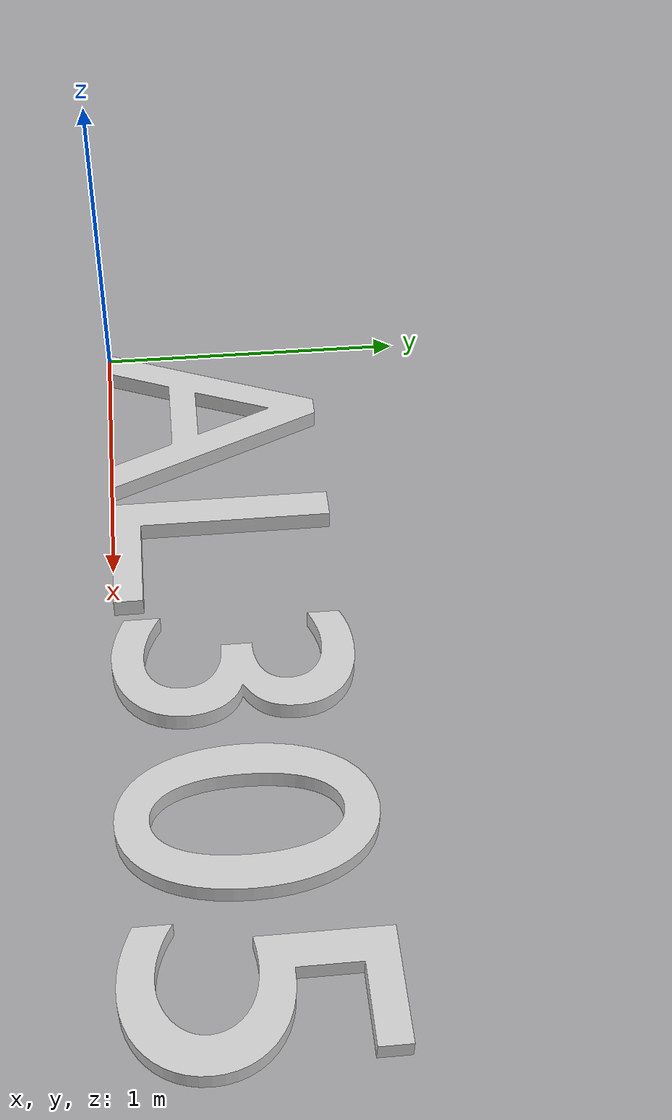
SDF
<?xml version='1.0'?>
    <sdf version='1.6'>
      <model name='AL305'>
        <link name='link'>
          <visual name='visual'>
            <geometry>
              <mesh>
                <uri>model://localros/text_3d_models/AL305/AL305.dae</uri>
              </mesh>
            </geometry>
          </visual>
        </link>
      </model>
    </sdf>
